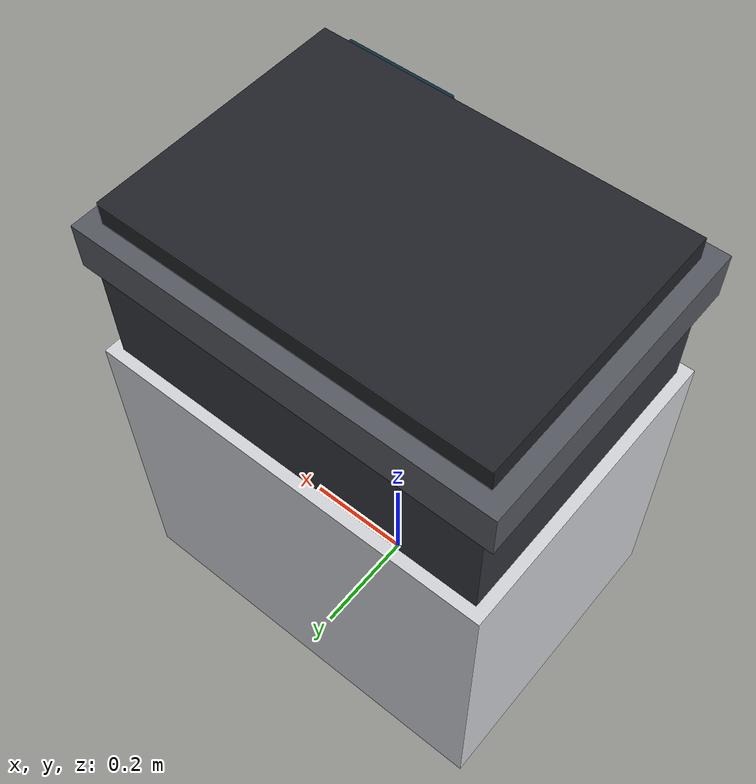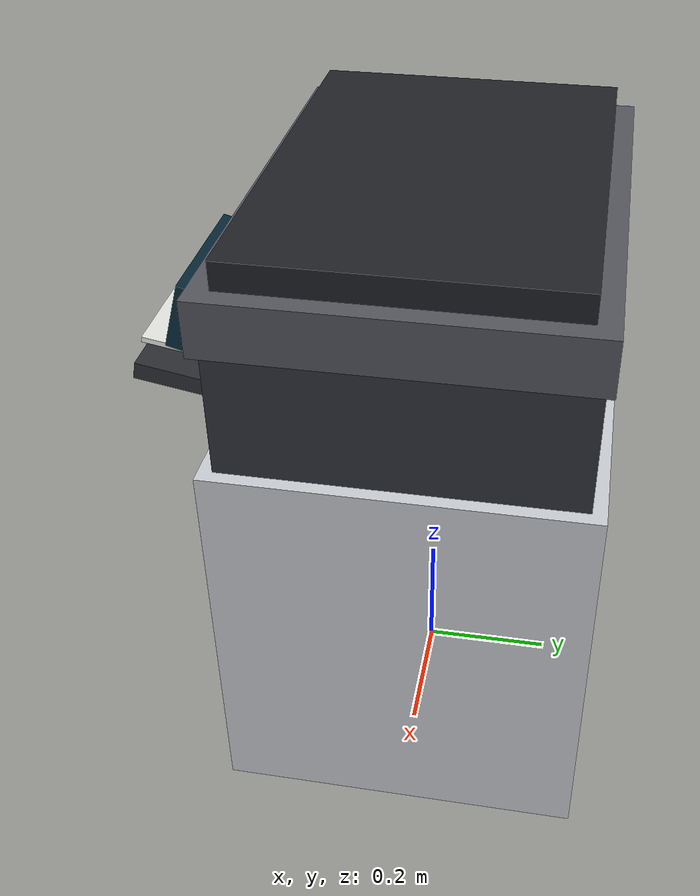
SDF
<?xml version="1.0"?>
<sdf version="1.9">
  <model name="office_printer">
    <static>true</static>
    <link name="body">
      <!-- Keep the collision footprint identical to the obstacle encoded in
           semantic_office_lab.pgm. -->
      <collision name="collision">
        <pose>0 0 0.45 0 0 0</pose>
        <geometry><box><size>0.8 0.6 0.9</size></box></geometry>
      </collision>

      <visual name="cabinet">
        <pose>0 0 0.30 0 0 0</pose>
        <geometry><box><size>0.72 0.54 0.60</size></box></geometry>
        <material><ambient>0.72 0.73 0.75 1</ambient><diffuse>0.82 0.83 0.85 1</diffuse></material>
      </visual>
      <visual name="cabinet_divider">
        <pose>0 -0.276 0.32 0 0 0</pose>
        <geometry><box><size>0.62 0.012 0.025</size></box></geometry>
        <material><ambient>0.18 0.19 0.21 1</ambient><diffuse>0.25 0.26 0.28 1</diffuse></material>
      </visual>
      <visual name="printer_body">
        <pose>0 0 0.70 0 0 0</pose>
        <geometry><box><size>0.68 0.50 0.20</size></box></geometry>
        <material><ambient>0.13 0.14 0.16 1</ambient><diffuse>0.20 0.21 0.24 1</diffuse></material>
      </visual>
      <visual name="output_slot">
        <pose>0 -0.256 0.70 0 0 0</pose>
        <geometry><box><size>0.42 0.018 0.08</size></box></geometry>
        <material><ambient>0.01 0.01 0.015 1</ambient><diffuse>0.02 0.02 0.025 1</diffuse></material>
      </visual>
      <visual name="output_tray">
        <pose>0 -0.31 0.66 -0.18 0 0</pose>
        <geometry><box><size>0.46 0.16 0.025</size></box></geometry>
        <material><ambient>0.12 0.13 0.15 1</ambient><diffuse>0.19 0.20 0.22 1</diffuse></material>
      </visual>
      <visual name="paper">
        <pose>0 -0.32 0.68 -0.18 0 0</pose>
        <geometry><box><size>0.36 0.15 0.008</size></box></geometry>
        <material><ambient>0.92 0.92 0.90 1</ambient><diffuse>0.98 0.98 0.96 1</diffuse></material>
      </visual>
      <visual name="scanner">
        <pose>0 0 0.83 0 0 0</pose>
        <geometry><box><size>0.72 0.52 0.08</size></box></geometry>
        <material><ambient>0.24 0.25 0.27 1</ambient><diffuse>0.34 0.35 0.38 1</diffuse></material>
      </visual>
      <visual name="scanner_lid">
        <pose>0 0 0.89 0 0 0</pose>
        <geometry><box><size>0.66 0.46 0.04</size></box></geometry>
        <material><ambient>0.08 0.09 0.10 1</ambient><diffuse>0.13 0.14 0.16 1</diffuse></material>
      </visual>
      <visual name="control_panel">
        <pose>0.22 -0.275 0.82 1.30 0 0</pose>
        <geometry><box><size>0.20 0.09 0.025</size></box></geometry>
        <material><ambient>0.03 0.09 0.13 1</ambient><diffuse>0.04 0.18 0.25 1</diffuse><emissive>0.01 0.08 0.12 1</emissive></material>
      </visual>
    </link>
  </model>
</sdf>
